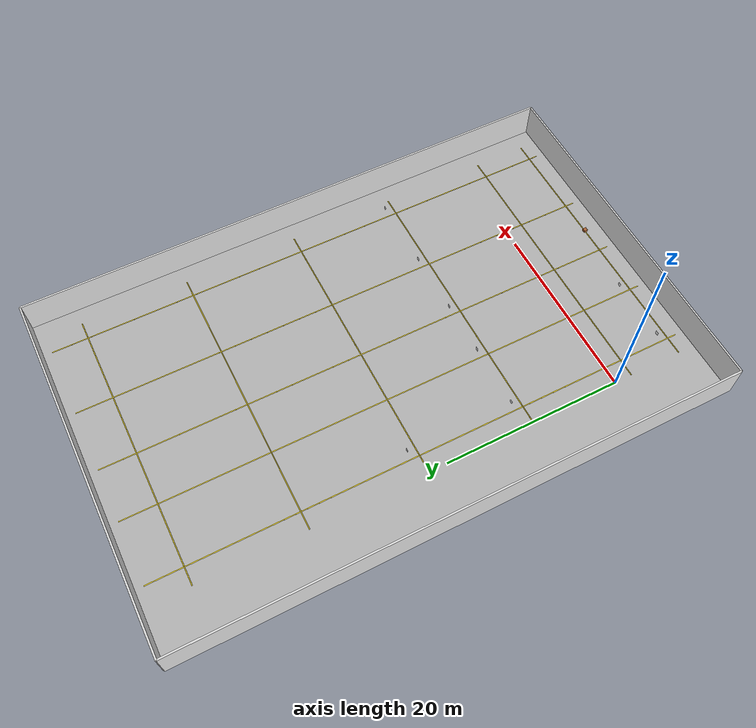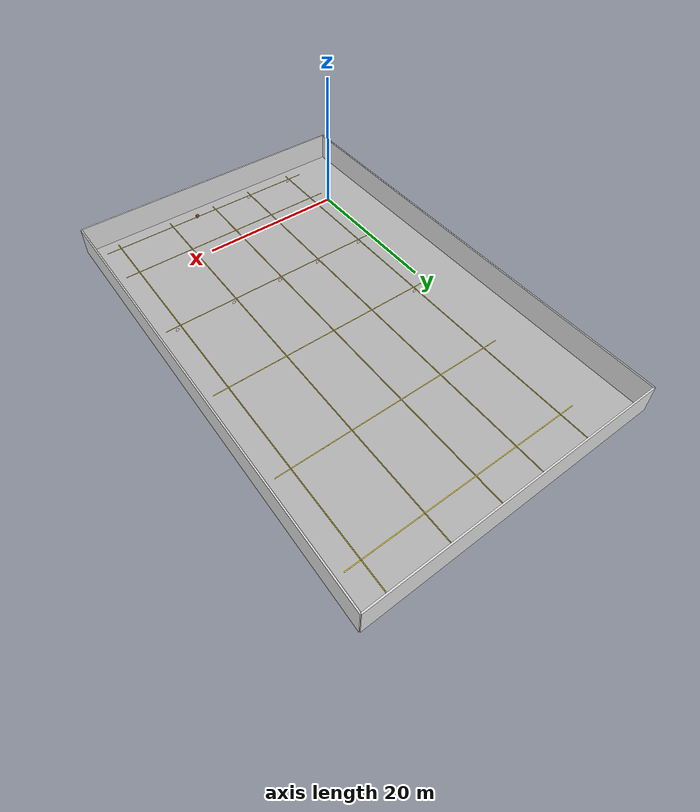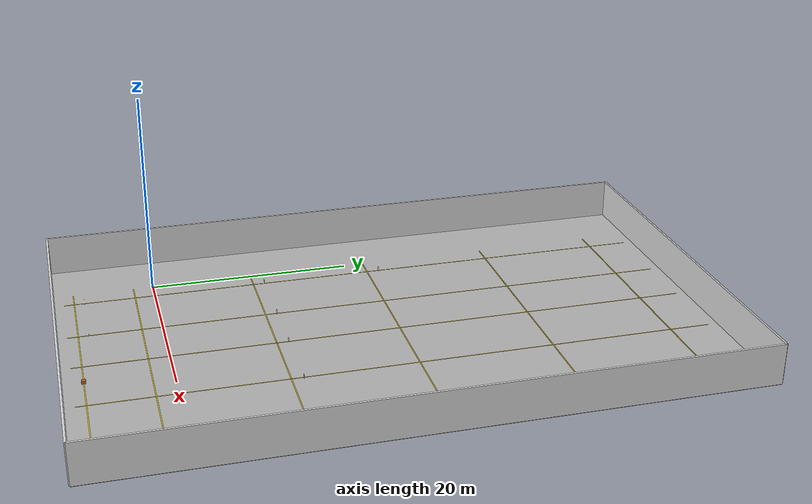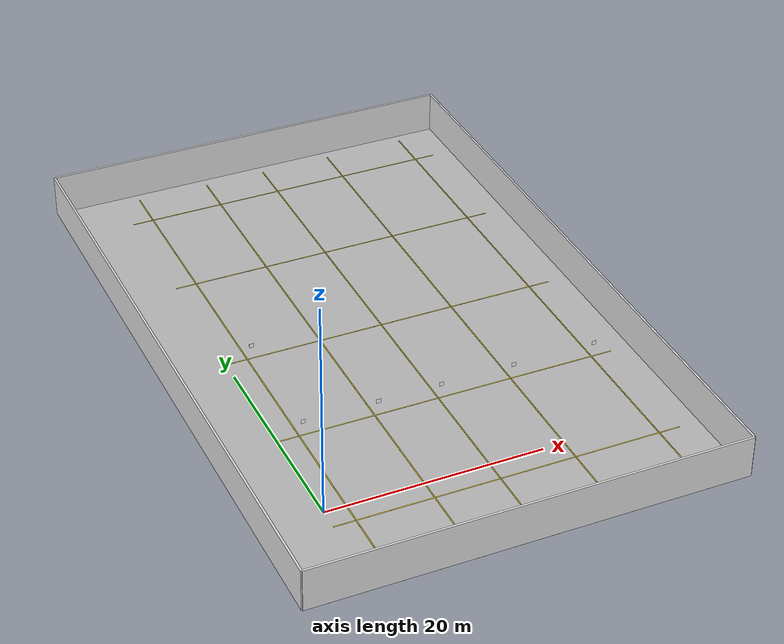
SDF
<sdf version="1.10">
 <world name="dynamic_warehouse">
  <plugin name="gz::sim::systems::Physics" filename="gz-sim-physics-system"/>
  <plugin name="gz::sim::systems::UserCommands" filename="gz-sim-user-commands-system"/>
  <plugin name="gz::sim::systems::SceneBroadcaster" filename="gz-sim-scene-broadcaster-system"/>
  <plugin name="gz::sim::systems::Sensors" filename="gz-sim-sensors-system">
   <render_engine>ogre2</render_engine>
  </plugin>
  <gravity>0 0 -9.8000000000000007</gravity>
  <physics name="default_physics" default="false" type="ode">
   <max_step_size>0.001</max_step_size>
   <real_time_factor>1</real_time_factor>
   <real_time_update_rate>1000</real_time_update_rate>
  </physics>
  <magnetic_field>6.0000000000000002e-06 2.3e-05 -4.1999999999999998e-05</magnetic_field>
  <atmosphere type="adiabatic"/>
  <scene>
   <ambient>0.550000012 0.550000012 0.550000012 1</ambient>
   <background>0.850000024 0.850000024 0.850000024 1</background>
   <shadows>false</shadows>
  </scene>
  <audio><device>default</device></audio>
  <spherical_coordinates>
   <surface_model>EARTH_WGS84</surface_model>
   <latitude_deg>0</latitude_deg>
   <longitude_deg>0</longitude_deg>
   <elevation>0</elevation>
   <heading_deg>0</heading_deg>
  </spherical_coordinates>
  <model name="depot_support_floor">
   <static>true</static>
   <pose>6 -11 -0.05 0 0 0</pose>
   <link name="link">
    <collision name="collision">
     <geometry><box><size>8 6 0.1</size></box></geometry>
     <surface><friction><ode><mu>1</mu><mu2>1</mu2></ode></friction></surface>
    </collision>
   </link>
  </model>
  <model name="plain_floor">
   <static>true</static>
   <pose>14 21 -0.050000000000000003 0 0 0</pose>
   <link name="link">
    <collision name="collision">
     <geometry><box><size>40 62 0.10000000000000001</size></box></geometry>
     <surface><friction><ode><mu>1</mu><mu2>1</mu2></ode></friction></surface>
    </collision>
    <visual name="visual">
     <geometry><box><size>40 62 0.10000000000000001</size></box></geometry>
     <material>
      <ambient>0.720000029 0.720000029 0.720000029 1</ambient>
      <diffuse>0.720000029 0.720000029 0.720000029 1</diffuse>
      <specular>0.0500000007 0.0500000007 0.0500000007 1</specular>
     </material>
    </visual>
    <inertial>
     <mass>1</mass>
     <inertia><ixx>1</ixx><ixy>0</ixy><ixz>0</ixz><iyy>1</iyy><iyz>0</iyz><izz>1</izz></inertia>
    </inertial>
   </link>
  </model>
  <model name="wall_west">
   <static>true</static>
   <pose>-6 21 2 0 0 0</pose>
   <link name="link">
    <collision name="collision">
     <geometry><box><size>0.20000000000000001 62 4</size></box></geometry>
     <surface><friction><ode><mu>1</mu><mu2>1</mu2></ode></friction></surface>
    </collision>
    <visual name="visual">
     <geometry><box><size>0.20000000000000001 62 4</size></box></geometry>
     <material>
      <ambient>0.879999995 0.879999995 0.879999995 1</ambient>
      <diffuse>0.879999995 0.879999995 0.879999995 1</diffuse>
      <specular>0.0500000007 0.0500000007 0.0500000007 1</specular>
     </material>
    </visual>
    <inertial>
     <mass>1</mass>
     <inertia><ixx>1</ixx><ixy>0</ixy><ixz>0</ixz><iyy>1</iyy><iyz>0</iyz><izz>1</izz></inertia>
    </inertial>
   </link>
  </model>
  <model name="wall_east">
   <static>true</static>
   <pose>34 21 2 0 0 0</pose>
   <link name="link">
    <collision name="collision">
     <geometry><box><size>0.20000000000000001 62 4</size></box></geometry>
     <surface><friction><ode><mu>1</mu><mu2>1</mu2></ode></friction></surface>
    </collision>
    <visual name="visual">
     <geometry><box><size>0.20000000000000001 62 4</size></box></geometry>
     <material>
      <ambient>0.879999995 0.879999995 0.879999995 1</ambient>
      <diffuse>0.879999995 0.879999995 0.879999995 1</diffuse>
      <specular>0.0500000007 0.0500000007 0.0500000007 1</specular>
     </material>
    </visual>
    <inertial>
     <mass>1</mass>
     <inertia><ixx>1</ixx><ixy>0</ixy><ixz>0</ixz><iyy>1</iyy><iyz>0</iyz><izz>1</izz></inertia>
    </inertial>
   </link>
  </model>
  <model name="wall_south">
   <static>true</static>
   <pose>14 -10 2 0 0 0</pose>
   <link name="link">
    <collision name="collision">
     <geometry><box><size>40 0.20000000000000001 4</size></box></geometry>
     <surface><friction><ode><mu>1</mu><mu2>1</mu2></ode></friction></surface>
    </collision>
    <visual name="visual">
     <geometry><box><size>40 0.20000000000000001 4</size></box></geometry>
     <material>
      <ambient>0.879999995 0.879999995 0.879999995 1</ambient>
      <diffuse>0.879999995 0.879999995 0.879999995 1</diffuse>
      <specular>0.0500000007 0.0500000007 0.0500000007 1</specular>
     </material>
    </visual>
    <inertial>
     <mass>1</mass>
     <inertia><ixx>1</ixx><ixy>0</ixy><ixz>0</ixz><iyy>1</iyy><iyz>0</iyz><izz>1</izz></inertia>
    </inertial>
   </link>
  </model>
  <model name="wall_north">
   <static>true</static>
   <pose>14 52 2 0 0 0</pose>
   <link name="link">
    <collision name="collision">
     <geometry><box><size>40 0.20000000000000001 4</size></box></geometry>
     <surface><friction><ode><mu>1</mu><mu2>1</mu2></ode></friction></surface>
    </collision>
    <visual name="visual">
     <geometry><box><size>40 0.20000000000000001 4</size></box></geometry>
     <material>
      <ambient>0.879999995 0.879999995 0.879999995 1</ambient>
      <diffuse>0.879999995 0.879999995 0.879999995 1</diffuse>
      <specular>0.0500000007 0.0500000007 0.0500000007 1</specular>
     </material>
    </visual>
    <inertial>
     <mass>1</mass>
     <inertia><ixx>1</ixx><ixy>0</ixy><ixz>0</ixz><iyy>1</iyy><iyz>0</iyz><izz>1</izz></inertia>
    </inertial>
   </link>
  </model>
  <model name="line_aisle_A">
   <static>true</static>
   <pose>2 21 0.0050000000000000001 0 0 0</pose>
   <link name="link">
    <visual name="vis">
     <geometry><box><size>0.10000000000000001 60 0.002</size></box></geometry>
     <material>
      <ambient>0.949999988 0.850000024 0.150000006 1</ambient>
      <diffuse>0.949999988 0.850000024 0.150000006 1</diffuse>
     </material>
    </visual>
    <inertial>
     <mass>1</mass>
     <inertia><ixx>1</ixx><ixy>0</ixy><ixz>0</ixz><iyy>1</iyy><iyz>0</iyz><izz>1</izz></inertia>
    </inertial>
   </link>
  </model>
  <model name="line_aisle_B">
   <static>true</static>
   <pose>9 21 0.0050000000000000001 0 0 0</pose>
   <link name="link">
    <visual name="vis">
     <geometry><box><size>0.10000000000000001 60 0.002</size></box></geometry>
     <material>
      <ambient>0.949999988 0.850000024 0.150000006 1</ambient>
      <diffuse>0.949999988 0.850000024 0.150000006 1</diffuse>
     </material>
    </visual>
    <inertial>
     <mass>1</mass>
     <inertia><ixx>1</ixx><ixy>0</ixy><ixz>0</ixz><iyy>1</iyy><iyz>0</iyz><izz>1</izz></inertia>
    </inertial>
   </link>
  </model>
  <model name="line_aisle_C">
   <static>true</static>
   <pose>15 21 0.0050000000000000001 0 0 0</pose>
   <link name="link">
    <visual name="vis">
     <geometry><box><size>0.10000000000000001 60 0.002</size></box></geometry>
     <material>
      <ambient>0.949999988 0.850000024 0.150000006 1</ambient>
      <diffuse>0.949999988 0.850000024 0.150000006 1</diffuse>
     </material>
    </visual>
    <inertial>
     <mass>1</mass>
     <inertia><ixx>1</ixx><ixy>0</ixy><ixz>0</ixz><iyy>1</iyy><iyz>0</iyz><izz>1</izz></inertia>
    </inertial>
   </link>
  </model>
  <model name="line_aisle_D">
   <static>true</static>
   <pose>22 21 0.0050000000000000001 0 0 0</pose>
   <link name="link">
    <visual name="vis">
     <geometry><box><size>0.10000000000000001 60 0.002</size></box></geometry>
     <material>
      <ambient>0.949999988 0.850000024 0.150000006 1</ambient>
      <diffuse>0.949999988 0.850000024 0.150000006 1</diffuse>
     </material>
    </visual>
    <inertial>
     <mass>1</mass>
     <inertia><ixx>1</ixx><ixy>0</ixy><ixz>0</ixz><iyy>1</iyy><iyz>0</iyz><izz>1</izz></inertia>
    </inertial>
   </link>
  </model>
  <model name="line_aisle_E">
   <static>true</static>
   <pose>30 21 0.0050000000000000001 0 0 0</pose>
   <link name="link">
    <visual name="vis">
     <geometry><box><size>0.10000000000000001 60 0.002</size></box></geometry>
     <material>
      <ambient>0.949999988 0.850000024 0.150000006 1</ambient>
      <diffuse>0.949999988 0.850000024 0.150000006 1</diffuse>
     </material>
    </visual>
    <inertial>
     <mass>1</mass>
     <inertia><ixx>1</ixx><ixy>0</ixy><ixz>0</ixz><iyy>1</iyy><iyz>0</iyz><izz>1</izz></inertia>
    </inertial>
   </link>
  </model>
  <model name="line_cross_south">
   <static>true</static>
   <pose>16 -8 0.0050000000000000001 0 0 0</pose>
   <link name="link">
    <visual name="vis">
     <geometry><box><size>32 0.10000000000000001 0.002</size></box></geometry>
     <material>
      <ambient>0.949999988 0.850000024 0.150000006 1</ambient>
      <diffuse>0.949999988 0.850000024 0.150000006 1</diffuse>
     </material>
    </visual>
    <inertial>
     <mass>1</mass>
     <inertia><ixx>1</ixx><ixy>0</ixy><ixz>0</ixz><iyy>1</iyy><iyz>0</iyz><izz>1</izz></inertia>
    </inertial>
   </link>
  </model>
  <model name="line_cross_row1">
   <static>true</static>
   <pose>16 -2 0.0050000000000000001 0 0 0</pose>
   <link name="link">
    <visual name="vis">
     <geometry><box><size>32 0.10000000000000001 0.002</size></box></geometry>
     <material>
      <ambient>0.949999988 0.850000024 0.150000006 1</ambient>
      <diffuse>0.949999988 0.850000024 0.150000006 1</diffuse>
     </material>
    </visual>
    <inertial>
     <mass>1</mass>
     <inertia><ixx>1</ixx><ixy>0</ixy><ixz>0</ixz><iyy>1</iyy><iyz>0</iyz><izz>1</izz></inertia>
    </inertial>
   </link>
  </model>
  <model name="line_cross_row2">
   <static>true</static>
   <pose>16 10 0.0050000000000000001 0 0 0</pose>
   <link name="link">
    <visual name="vis">
     <geometry><box><size>32 0.10000000000000001 0.002</size></box></geometry>
     <material>
      <ambient>0.949999988 0.850000024 0.150000006 1</ambient>
      <diffuse>0.949999988 0.850000024 0.150000006 1</diffuse>
     </material>
    </visual>
    <inertial>
     <mass>1</mass>
     <inertia><ixx>1</ixx><ixy>0</ixy><ixz>0</ixz><iyy>1</iyy><iyz>0</iyz><izz>1</izz></inertia>
    </inertial>
   </link>
  </model>
  <model name="line_cross_row3">
   <static>true</static>
   <pose>16 22 0.0050000000000000001 0 0 0</pose>
   <link name="link">
    <visual name="vis">
     <geometry><box><size>32 0.10000000000000001 0.002</size></box></geometry>
     <material>
      <ambient>0.949999988 0.850000024 0.150000006 1</ambient>
      <diffuse>0.949999988 0.850000024 0.150000006 1</diffuse>
     </material>
    </visual>
    <inertial>
     <mass>1</mass>
     <inertia><ixx>1</ixx><ixy>0</ixy><ixz>0</ixz><iyy>1</iyy><iyz>0</iyz><izz>1</izz></inertia>
    </inertial>
   </link>
  </model>
  <model name="line_cross_row4">
   <static>true</static>
   <pose>16 35 0.0050000000000000001 0 0 0</pose>
   <link name="link">
    <visual name="vis">
     <geometry><box><size>32 0.10000000000000001 0.002</size></box></geometry>
     <material>
      <ambient>0.949999988 0.850000024 0.150000006 1</ambient>
      <diffuse>0.949999988 0.850000024 0.150000006 1</diffuse>
     </material>
    </visual>
    <inertial>
     <mass>1</mass>
     <inertia><ixx>1</ixx><ixy>0</ixy><ixz>0</ixz><iyy>1</iyy><iyz>0</iyz><izz>1</izz></inertia>
    </inertial>
   </link>
  </model>
  <model name="line_cross_row5">
   <static>true</static>
   <pose>16 47 0.0050000000000000001 0 0 0</pose>
   <link name="link">
    <visual name="vis">
     <geometry><box><size>32 0.10000000000000001 0.002</size></box></geometry>
     <material>
      <ambient>0.949999988 0.850000024 0.150000006 1</ambient>
      <diffuse>0.949999988 0.850000024 0.150000006 1</diffuse>
     </material>
    </visual>
    <inertial>
     <mass>1</mass>
     <inertia><ixx>1</ixx><ixy>0</ixy><ixz>0</ixz><iyy>1</iyy><iyz>0</iyz><izz>1</izz></inertia>
    </inertial>
   </link>
  </model>
  <light name="Warehouse_CeilingLight_003" type="point">
   <pose>14 21 10 0 0 0</pose>
   <cast_shadows>false</cast_shadows>
   <intensity>1</intensity>
   <direction>0 0 -1</direction>
   <diffuse>0.699999988 0.699999988 0.699999988 1</diffuse>
   <specular>0.200000003 0.200000003 0.200000003 1</specular>
   <attenuation>
    <range>80</range>
    <linear>0.01</linear>
    <constant>0.29999999999999999</constant>
    <quadratic>0.001</quadratic>
   </attenuation>
   <spot><inner_angle>0</inner_angle><outer_angle>0</outer_angle><falloff>0</falloff></spot>
  </light>
  <include>
   <uri>model://aruco_marker_0</uri>
   <n>aruco_marker_0</n>
   <pose>2.8000 -7.0000 0.6000 0 0 0.0000</pose>
  </include>
  <include>
   <uri>model://aruco_marker_1</uri>
   <n>aruco_marker_1</n>
   <pose>9.8000 -7.0000 0.6000 0 0 0.0000</pose>
  </include>
  <include>
   <uri>model://aruco_marker_10</uri>
   <n>aruco_marker_10</n>
   <pose>2.8000 11.0000 0.6000 0 0 0.0000</pose>
  </include>
  <include>
   <uri>model://aruco_marker_11</uri>
   <n>aruco_marker_11</n>
   <pose>9.8000 11.0000 0.6000 0 0 0.0000</pose>
  </include>
  <include>
   <uri>model://aruco_marker_12</uri>
   <n>aruco_marker_12</n>
   <pose>15.8000 11.0000 0.6000 0 0 0.0000</pose>
  </include>
  <include>
   <uri>model://aruco_marker_13</uri>
   <n>aruco_marker_13</n>
   <pose>22.8000 11.0000 0.6000 0 0 0.0000</pose>
  </include>
  <include>
   <uri>model://aruco_marker_14</uri>
   <n>aruco_marker_14</n>
   <pose>30.8000 11.0000 0.6000 0 0 0.0000</pose>
  </include>
  <include>
   <uri>model://aruco_marker_15</uri>
   <n>aruco_marker_15</n>
   <pose>2.8000 23.0000 0.6000 0 0 0.0000</pose>
  </include>
  <model name="floor_box_1">
   <static>true</static>
   <pose>18.0 -8.0 0 0 0 0</pose>
   <link name="body">
    <visual name="visual">
     <pose>0 0 0.15 0 0 0</pose>
     <geometry><box><size>0.4 0.4 0.3</size></box></geometry>
     <material><ambient>0.5 0.25 0.15 1</ambient><diffuse>0.7 0.4 0.2 1</diffuse></material>
    </visual>
    <collision name="col">
     <pose>0 0 0.15 0 0 0</pose>
     <geometry><box><size>0.4 0.4 0.3</size></box></geometry>
    </collision>
   </link>
  </model>
 </world>
</sdf>

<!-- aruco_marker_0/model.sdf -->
<sdf version="1.8">
  <model name="aruco_marker_0">
    <static>true</static>
    <link name="link">
      <visual name="front">
        <geometry>
          <box>
            <size>0.4 0.01 0.4</size>
          </box>
        </geometry>
        <material>
          <ambient>1 1 1 1</ambient>
          <diffuse>1 1 1 1</diffuse>
          <pbr>
            <metal>
              <albedo_map>model://aruco_marker_0/materials/textures/marker_0.png</albedo_map>
              <metalness>0.0</metalness>
              <roughness>0.9</roughness>
            </metal>
          </pbr>
        </material>
      </visual>
      <collision name="col">
        <geometry>
          <box>
            <size>0.4 0.01 0.4</size>
          </box>
        </geometry>
      </collision>
    </link>
  </model>
</sdf>

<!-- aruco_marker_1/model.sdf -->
<sdf version="1.8">
  <model name="aruco_marker_1">
    <static>true</static>
    <link name="link">
      <visual name="front">
        <geometry>
          <box>
            <size>0.4 0.01 0.4</size>
          </box>
        </geometry>
        <material>
          <ambient>1 1 1 1</ambient>
          <diffuse>1 1 1 1</diffuse>
          <pbr>
            <metal>
              <albedo_map>model://aruco_marker_1/materials/textures/marker_1.png</albedo_map>
              <metalness>0.0</metalness>
              <roughness>0.9</roughness>
            </metal>
          </pbr>
        </material>
      </visual>
      <collision name="col">
        <geometry>
          <box>
            <size>0.4 0.01 0.4</size>
          </box>
        </geometry>
      </collision>
    </link>
  </model>
</sdf>

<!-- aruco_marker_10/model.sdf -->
<sdf version="1.8">
  <model name="aruco_marker_10">
    <static>true</static>
    <link name="link">
      <visual name="front">
        <geometry>
          <box>
            <size>0.4 0.01 0.4</size>
          </box>
        </geometry>
        <material>
          <ambient>1 1 1 1</ambient>
          <diffuse>1 1 1 1</diffuse>
          <pbr>
            <metal>
              <albedo_map>model://aruco_marker_10/materials/textures/marker_10.png</albedo_map>
              <metalness>0.0</metalness>
              <roughness>0.9</roughness>
            </metal>
          </pbr>
        </material>
      </visual>
      <collision name="col">
        <geometry>
          <box>
            <size>0.4 0.01 0.4</size>
          </box>
        </geometry>
      </collision>
    </link>
  </model>
</sdf>

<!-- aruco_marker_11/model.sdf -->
<sdf version="1.8">
  <model name="aruco_marker_11">
    <static>true</static>
    <link name="link">
      <visual name="front">
        <geometry>
          <box>
            <size>0.4 0.01 0.4</size>
          </box>
        </geometry>
        <material>
          <ambient>1 1 1 1</ambient>
          <diffuse>1 1 1 1</diffuse>
          <pbr>
            <metal>
              <albedo_map>model://aruco_marker_11/materials/textures/marker_11.png</albedo_map>
              <metalness>0.0</metalness>
              <roughness>0.9</roughness>
            </metal>
          </pbr>
        </material>
      </visual>
      <collision name="col">
        <geometry>
          <box>
            <size>0.4 0.01 0.4</size>
          </box>
        </geometry>
      </collision>
    </link>
  </model>
</sdf>

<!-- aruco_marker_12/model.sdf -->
<sdf version="1.8">
  <model name="aruco_marker_12">
    <static>true</static>
    <link name="link">
      <visual name="front">
        <geometry>
          <box>
            <size>0.4 0.01 0.4</size>
          </box>
        </geometry>
        <material>
          <ambient>1 1 1 1</ambient>
          <diffuse>1 1 1 1</diffuse>
          <pbr>
            <metal>
              <albedo_map>model://aruco_marker_12/materials/textures/marker_12.png</albedo_map>
              <metalness>0.0</metalness>
              <roughness>0.9</roughness>
            </metal>
          </pbr>
        </material>
      </visual>
      <collision name="col">
        <geometry>
          <box>
            <size>0.4 0.01 0.4</size>
          </box>
        </geometry>
      </collision>
    </link>
  </model>
</sdf>

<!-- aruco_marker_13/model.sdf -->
<sdf version="1.8">
  <model name="aruco_marker_13">
    <static>true</static>
    <link name="link">
      <visual name="front">
        <geometry>
          <box>
            <size>0.4 0.01 0.4</size>
          </box>
        </geometry>
        <material>
          <ambient>1 1 1 1</ambient>
          <diffuse>1 1 1 1</diffuse>
          <pbr>
            <metal>
              <albedo_map>model://aruco_marker_13/materials/textures/marker_13.png</albedo_map>
              <metalness>0.0</metalness>
              <roughness>0.9</roughness>
            </metal>
          </pbr>
        </material>
      </visual>
      <collision name="col">
        <geometry>
          <box>
            <size>0.4 0.01 0.4</size>
          </box>
        </geometry>
      </collision>
    </link>
  </model>
</sdf>

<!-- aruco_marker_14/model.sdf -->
<sdf version="1.8">
  <model name="aruco_marker_14">
    <static>true</static>
    <link name="link">
      <visual name="front">
        <geometry>
          <box>
            <size>0.4 0.01 0.4</size>
          </box>
        </geometry>
        <material>
          <ambient>1 1 1 1</ambient>
          <diffuse>1 1 1 1</diffuse>
          <pbr>
            <metal>
              <albedo_map>model://aruco_marker_14/materials/textures/marker_14.png</albedo_map>
              <metalness>0.0</metalness>
              <roughness>0.9</roughness>
            </metal>
          </pbr>
        </material>
      </visual>
      <collision name="col">
        <geometry>
          <box>
            <size>0.4 0.01 0.4</size>
          </box>
        </geometry>
      </collision>
    </link>
  </model>
</sdf>

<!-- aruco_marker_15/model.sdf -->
<sdf version="1.8">
  <model name="aruco_marker_15">
    <static>true</static>
    <link name="link">
      <visual name="front">
        <geometry>
          <box>
            <size>0.4 0.01 0.4</size>
          </box>
        </geometry>
        <material>
          <ambient>1 1 1 1</ambient>
          <diffuse>1 1 1 1</diffuse>
          <pbr>
            <metal>
              <albedo_map>model://aruco_marker_15/materials/textures/marker_15.png</albedo_map>
              <metalness>0.0</metalness>
              <roughness>0.9</roughness>
            </metal>
          </pbr>
        </material>
      </visual>
      <collision name="col">
        <geometry>
          <box>
            <size>0.4 0.01 0.4</size>
          </box>
        </geometry>
      </collision>
    </link>
  </model>
</sdf>
